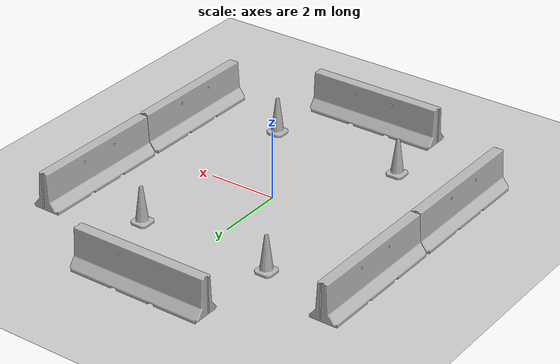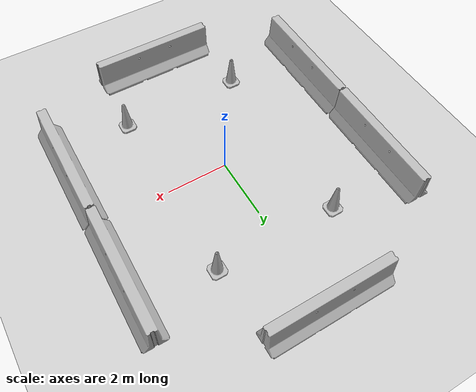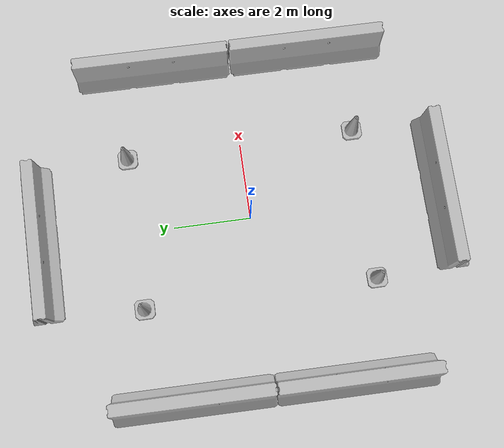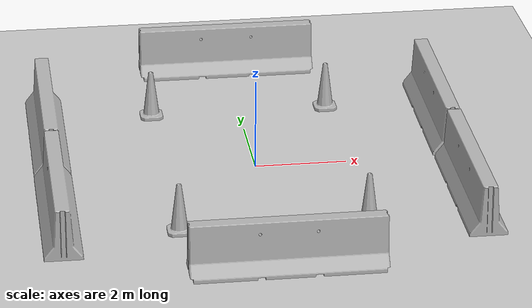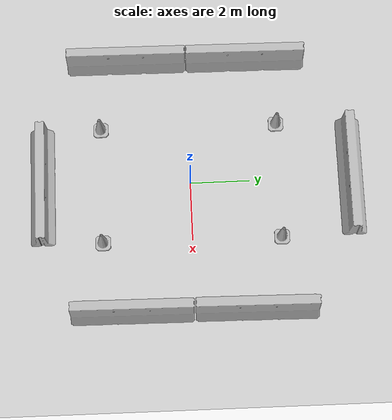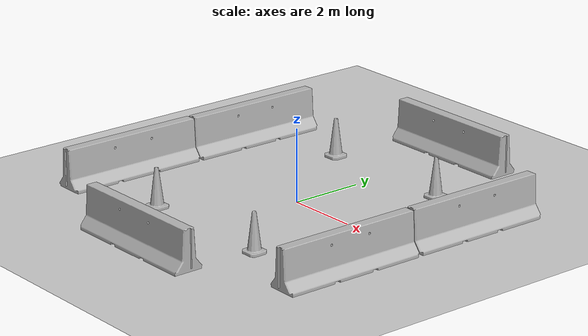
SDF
<sdf version="1.4">
 <world name="default">
  <light name="sun" type="directional">
   <pose>0 0 10 0 -0 0</pose>
   <diffuse>0.8 0.8 0.8 1</diffuse>
   <specular>0.2 0.2 0.2 1</specular>
   <attenuation>
    <range>1000</range>
    <constant>0.9</constant>
    <linear>0.01</linear>
    <quadratic>0.001</quadratic>
   </attenuation>
   <direction>-0.5 0.1 -0.9</direction>
  </light>
  <model name="ground_plane">
   <static>1</static>
   <link name="link">
    <collision name="collision">
     <geometry><plane><normal>0 0 1</normal><size>100 100</size></plane></geometry>
     <surface><friction><ode><mu>100</mu><mu2>50</mu2></ode></friction></surface>
    </collision>
    <visual name="visual">
     <cast_shadows>0</cast_shadows>
     <geometry><plane><normal>0 0 1</normal><size>100 100</size></plane></geometry>
     <material>
      <script><uri>file://media/materials/scripts/gazebo.material</uri><name>Gazebo/Grey</name></script>
     </material>
    </visual>
    <velocity_decay><linear>0</linear><angular>0</angular></velocity_decay>
   </link>
  </model>
  <physics type="ode">
   <max_step_size>0.001</max_step_size>
   <real_time_factor>1</real_time_factor>
   <real_time_update_rate>1000</real_time_update_rate>
   <gravity>0 0 -9.8</gravity>
  </physics>
  <scene><ambient>0.4 0.4 0.4 1</ambient><background>0.7 0.7 0.7 1</background><shadows>1</shadows></scene>
  <spherical_coordinates>
   <surface_model>EARTH_WGS84</surface_model>
   <latitude_deg>0</latitude_deg>
   <longitude_deg>0</longitude_deg>
   <elevation>0</elevation>
   <heading_deg>0</heading_deg>
  </spherical_coordinates>
  <model name="jersey_barrier">
   <static>1</static>
   <link name="link">
    <visual name="visual">
     <geometry><mesh><uri>model://jersey_barrier/meshes/jersey_barrier.dae</uri></mesh></geometry>
    </visual>
    <collision name="upright">
     <pose>0 0 0.5715 0 -0 0</pose>
     <geometry><box><size>4.06542 0.3063 1.143</size></box></geometry>
    </collision>
    <collision name="base">
     <pose>0 0 0.032258 0 -0 0</pose>
     <geometry><box><size>4.06542 0.8107 0.064516</size></box></geometry>
    </collision>
    <collision name="base2">
     <pose>0 0 0.1 0 -0 0</pose>
     <geometry><box><size>4.06542 0.65 0.1</size></box></geometry>
    </collision>
    <collision name="base3">
     <pose>0 0 0.2 0 -0 0</pose>
     <geometry><box><size>4.06542 0.5 0.1</size></box></geometry>
    </collision>
    <collision name="left-angle">
     <pose>0 -0.224 0.2401 0.9 -0 0</pose>
     <geometry><box><size>4.06542 0.5 0.064516</size></box></geometry>
    </collision>
    <collision name="right-angle">
     <pose>0 0.224 0.2401 -0.9 0 0</pose>
     <geometry><box><size>4.06542 0.5 0.064516</size></box></geometry>
    </collision>
    <velocity_decay><linear>0</linear><angular>0</angular></velocity_decay>
   </link>
   <pose>0 5.44104 0 0 -0 0</pose>
  </model>
  <model name="jersey_barrier_0">
   <static>1</static>
   <link name="link">
    <visual name="visual">
     <geometry><mesh><uri>model://jersey_barrier/meshes/jersey_barrier.dae</uri></mesh></geometry>
    </visual>
    <collision name="upright">
     <pose>0 0 0.5715 0 -0 0</pose>
     <geometry><box><size>4.06542 0.3063 1.143</size></box></geometry>
    </collision>
    <collision name="base">
     <pose>0 0 0.032258 0 -0 0</pose>
     <geometry><box><size>4.06542 0.8107 0.064516</size></box></geometry>
    </collision>
    <collision name="base2">
     <pose>0 0 0.1 0 -0 0</pose>
     <geometry><box><size>4.06542 0.65 0.1</size></box></geometry>
    </collision>
    <collision name="base3">
     <pose>0 0 0.2 0 -0 0</pose>
     <geometry><box><size>4.06542 0.5 0.1</size></box></geometry>
    </collision>
    <collision name="left-angle">
     <pose>0 -0.224 0.2401 0.9 -0 0</pose>
     <geometry><box><size>4.06542 0.5 0.064516</size></box></geometry>
    </collision>
    <collision name="right-angle">
     <pose>0 0.224 0.2401 -0.9 0 0</pose>
     <geometry><box><size>4.06542 0.5 0.064516</size></box></geometry>
    </collision>
    <velocity_decay><linear>0</linear><angular>0</angular></velocity_decay>
   </link>
   <pose>0 -5 0 0 -0 0</pose>
  </model>
  <model name="jersey_barrier_1">
   <static>1</static>
   <link name="link">
    <visual name="visual">
     <geometry><mesh><uri>model://jersey_barrier/meshes/jersey_barrier.dae</uri></mesh></geometry>
    </visual>
    <collision name="upright">
     <pose>0 0 0.5715 0 -0 0</pose>
     <geometry><box><size>4.06542 0.3063 1.143</size></box></geometry>
    </collision>
    <collision name="base">
     <pose>0 0 0.032258 0 -0 0</pose>
     <geometry><box><size>4.06542 0.8107 0.064516</size></box></geometry>
    </collision>
    <collision name="base2">
     <pose>0 0 0.1 0 -0 0</pose>
     <geometry><box><size>4.06542 0.65 0.1</size></box></geometry>
    </collision>
    <collision name="base3">
     <pose>0 0 0.2 0 -0 0</pose>
     <geometry><box><size>4.06542 0.5 0.1</size></box></geometry>
    </collision>
    <collision name="left-angle">
     <pose>0 -0.224 0.2401 0.9 -0 0</pose>
     <geometry><box><size>4.06542 0.5 0.064516</size></box></geometry>
    </collision>
    <collision name="right-angle">
     <pose>0 0.224 0.2401 -0.9 0 0</pose>
     <geometry><box><size>4.06542 0.5 0.064516</size></box></geometry>
    </collision>
    <velocity_decay><linear>0</linear><angular>0</angular></velocity_decay>
   </link>
   <pose>-4.42312 2.02901 0 0 0 -1.57961</pose>
  </model>
  <model name="jersey_barrier_2">
   <static>1</static>
   <link name="link">
    <visual name="visual">
     <geometry><mesh><uri>model://jersey_barrier/meshes/jersey_barrier.dae</uri></mesh></geometry>
    </visual>
    <collision name="upright">
     <pose>0 0 0.5715 0 -0 0</pose>
     <geometry><box><size>4.06542 0.3063 1.143</size></box></geometry>
    </collision>
    <collision name="base">
     <pose>0 0 0.032258 0 -0 0</pose>
     <geometry><box><size>4.06542 0.8107 0.064516</size></box></geometry>
    </collision>
    <collision name="base2">
     <pose>0 0 0.1 0 -0 0</pose>
     <geometry><box><size>4.06542 0.65 0.1</size></box></geometry>
    </collision>
    <collision name="base3">
     <pose>0 0 0.2 0 -0 0</pose>
     <geometry><box><size>4.06542 0.5 0.1</size></box></geometry>
    </collision>
    <collision name="left-angle">
     <pose>0 -0.224 0.2401 0.9 -0 0</pose>
     <geometry><box><size>4.06542 0.5 0.064516</size></box></geometry>
    </collision>
    <collision name="right-angle">
     <pose>0 0.224 0.2401 -0.9 0 0</pose>
     <geometry><box><size>4.06542 0.5 0.064516</size></box></geometry>
    </collision>
    <velocity_decay><linear>0</linear><angular>0</angular></velocity_decay>
   </link>
   <pose>-4.45887 -2.05711 0 0 0 -1.57818</pose>
  </model>
  <model name="jersey_barrier_3">
   <static>1</static>
   <link name="link">
    <visual name="visual">
     <geometry><mesh><uri>model://jersey_barrier/meshes/jersey_barrier.dae</uri></mesh></geometry>
    </visual>
    <collision name="upright">
     <pose>0 0 0.5715 0 -0 0</pose>
     <geometry><box><size>4.06542 0.3063 1.143</size></box></geometry>
    </collision>
    <collision name="base">
     <pose>0 0 0.032258 0 -0 0</pose>
     <geometry><box><size>4.06542 0.8107 0.064516</size></box></geometry>
    </collision>
    <collision name="base2">
     <pose>0 0 0.1 0 -0 0</pose>
     <geometry><box><size>4.06542 0.65 0.1</size></box></geometry>
    </collision>
    <collision name="base3">
     <pose>0 0 0.2 0 -0 0</pose>
     <geometry><box><size>4.06542 0.5 0.1</size></box></geometry>
    </collision>
    <collision name="left-angle">
     <pose>0 -0.224 0.2401 0.9 -0 0</pose>
     <geometry><box><size>4.06542 0.5 0.064516</size></box></geometry>
    </collision>
    <collision name="right-angle">
     <pose>0 0.224 0.2401 -0.9 0 0</pose>
     <geometry><box><size>4.06542 0.5 0.064516</size></box></geometry>
    </collision>
    <velocity_decay><linear>0</linear><angular>0</angular></velocity_decay>
   </link>
   <pose>4.39131 2.04022 0 0 0 -1.58321</pose>
  </model>
  <model name="jersey_barrier_4">
   <static>1</static>
   <link name="link">
    <visual name="visual">
     <geometry><mesh><uri>model://jersey_barrier/meshes/jersey_barrier.dae</uri></mesh></geometry>
    </visual>
    <collision name="upright">
     <pose>0 0 0.5715 0 -0 0</pose>
     <geometry><box><size>4.06542 0.3063 1.143</size></box></geometry>
    </collision>
    <collision name="base">
     <pose>0 0 0.032258 0 -0 0</pose>
     <geometry><box><size>4.06542 0.8107 0.064516</size></box></geometry>
    </collision>
    <collision name="base2">
     <pose>0 0 0.1 0 -0 0</pose>
     <geometry><box><size>4.06542 0.65 0.1</size></box></geometry>
    </collision>
    <collision name="base3">
     <pose>0 0 0.2 0 -0 0</pose>
     <geometry><box><size>4.06542 0.5 0.1</size></box></geometry>
    </collision>
    <collision name="left-angle">
     <pose>0 -0.224 0.2401 0.9 -0 0</pose>
     <geometry><box><size>4.06542 0.5 0.064516</size></box></geometry>
    </collision>
    <collision name="right-angle">
     <pose>0 0.224 0.2401 -0.9 0 0</pose>
     <geometry><box><size>4.06542 0.5 0.064516</size></box></geometry>
    </collision>
    <velocity_decay><linear>0</linear><angular>0</angular></velocity_decay>
   </link>
   <pose>4.36004 -2.06551 0 0 0 -1.57929</pose>
  </model>
  <model name="Construction Cone">
   <link name="link">
    <collision name="collision">
     <geometry>
      <mesh><scale>10 10 10</scale><uri>model://construction_cone/meshes/construction_cone.dae</uri></mesh>
     </geometry>
    </collision>
    <visual name="visual">
     <geometry>
      <mesh><scale>10 10 10</scale><uri>model://construction_cone/meshes/construction_cone.dae</uri></mesh>
     </geometry>
    </visual>
    <velocity_decay><linear>0</linear><angular>0</angular></velocity_decay>
    <inertial>
     <inertia><ixx>1</ixx><ixy>0</ixy><ixz>0</ixz><iyy>1</iyy><iyz>0</iyz><izz>1</izz></inertia>
     <mass>1</mass>
    </inertial>
   </link>
   <pose>-2 -3 -9e-06 0 1e-06 0</pose>
   <static>0</static>
  </model>
  <model name="Construction Cone_0">
   <link name="link">
    <collision name="collision">
     <geometry>
      <mesh><scale>10 10 10</scale><uri>model://construction_cone/meshes/construction_cone.dae</uri></mesh>
     </geometry>
    </collision>
    <visual name="visual">
     <geometry>
      <mesh><scale>10 10 10</scale><uri>model://construction_cone/meshes/construction_cone.dae</uri></mesh>
     </geometry>
    </visual>
    <velocity_decay><linear>0</linear><angular>0</angular></velocity_decay>
    <inertial>
     <inertia><ixx>1</ixx><ixy>0</ixy><ixz>0</ixz><iyy>1</iyy><iyz>0</iyz><izz>1</izz></inertia>
     <mass>1</mass>
    </inertial>
   </link>
   <pose>-2 3 -0 0 -1e-06 0</pose>
   <static>0</static>
  </model>
  <model name="Construction Cone_1">
   <link name="link">
    <collision name="collision">
     <geometry>
      <mesh><scale>10 10 10</scale><uri>model://construction_cone/meshes/construction_cone.dae</uri></mesh>
     </geometry>
    </collision>
    <visual name="visual">
     <geometry>
      <mesh><scale>10 10 10</scale><uri>model://construction_cone/meshes/construction_cone.dae</uri></mesh>
     </geometry>
    </visual>
    <velocity_decay><linear>0</linear><angular>0</angular></velocity_decay>
    <inertial>
     <inertia><ixx>1</ixx><ixy>0</ixy><ixz>0</ixz><iyy>1</iyy><iyz>0</iyz><izz>1</izz></inertia>
     <mass>1</mass>
    </inertial>
   </link>
   <pose>2 3 -8e-06 1e-06 1e-06 0</pose>
   <static>0</static>
  </model>
  <model name="Construction Cone_2">
   <link name="link">
    <collision name="collision">
     <geometry>
      <mesh><scale>10 10 10</scale><uri>model://construction_cone/meshes/construction_cone.dae</uri></mesh>
     </geometry>
    </collision>
    <visual name="visual">
     <geometry>
      <mesh><scale>10 10 10</scale><uri>model://construction_cone/meshes/construction_cone.dae</uri></mesh>
     </geometry>
    </visual>
    <velocity_decay><linear>0</linear><angular>0</angular></velocity_decay>
    <inertial>
     <inertia><ixx>1</ixx><ixy>0</ixy><ixz>0</ixz><iyy>1</iyy><iyz>0</iyz><izz>1</izz></inertia>
     <mass>1</mass>
    </inertial>
   </link>
   <pose>2 -3 -0 0 -2e-06 0</pose>
   <static>0</static>
  </model>
 </world>
</sdf>
